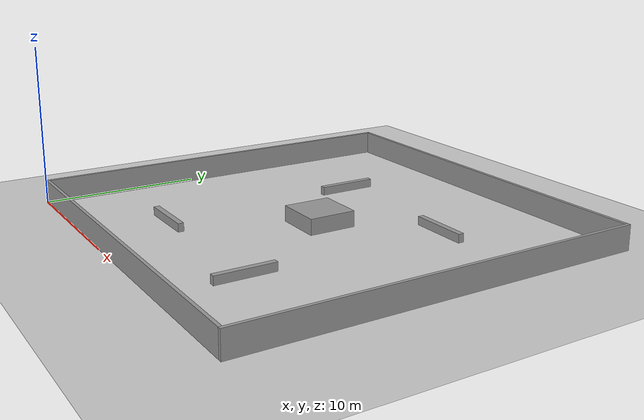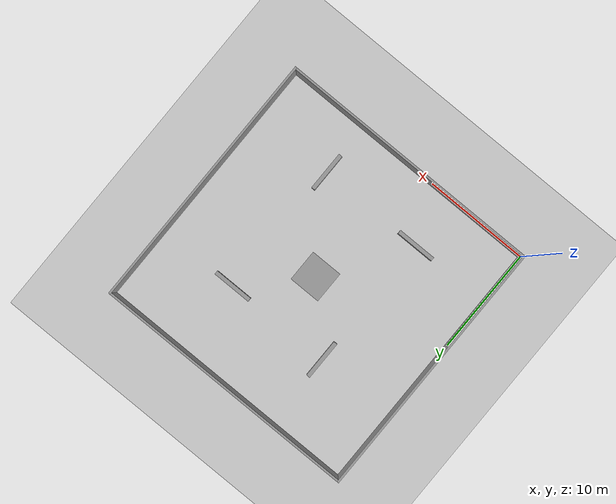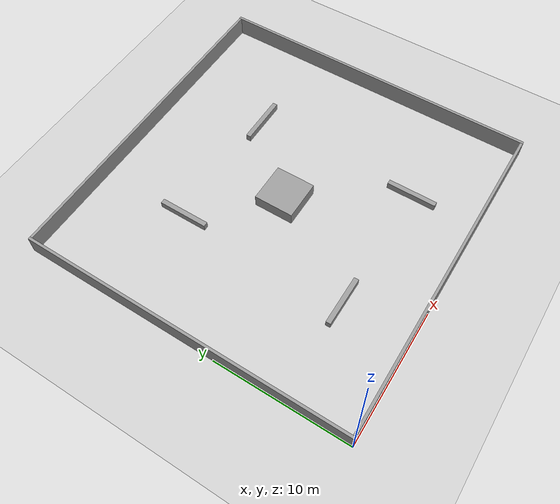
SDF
<sdf version="1.6">
 <world name="default">
  <light name="sun" type="directional">
   <pose>0 0 10 0 -0 0</pose>
   <diffuse>0.8 0.8 0.8 1</diffuse>
   <specular>0.2 0.2 0.2 1</specular>
   <attenuation>
    <range>1000</range>
    <constant>0.9</constant>
    <linear>0.01</linear>
    <quadratic>0.001</quadratic>
   </attenuation>
   <direction>-0.5 0.1 -0.9</direction>
  </light>
  <model name="ground_plane">
   <static>1</static>
   <link name="link">
    <collision name="collision">
     <geometry><plane><normal>0 0 1</normal><size>100 100</size></plane></geometry>
     <surface><friction><ode><mu>100</mu><mu2>50</mu2></ode></friction></surface>
    </collision>
    <visual name="visual">
     <cast_shadows>0</cast_shadows>
     <geometry><plane><normal>0 0 1</normal><size>100 100</size></plane></geometry>
     <material>
      <script><uri>file://media/materials/scripts/gazebo.material</uri><name>Gazebo/Grey</name></script>
     </material>
    </visual>
   </link>
  </model>
  <gravity>0 0 -9.8</gravity>
  <magnetic_field>6e-06 2.3e-05 -4.2e-05</magnetic_field>
  <atmosphere type="adiabatic"/>
  <physics name="default_physics" default="0" type="ode">
   <max_step_size>0.001</max_step_size>
   <real_time_factor>1</real_time_factor>
   <real_time_update_rate>1000</real_time_update_rate>
  </physics>
  <scene><ambient>0.4 0.4 0.4 1</ambient><background>0.7 0.7 0.7 1</background><shadows>1</shadows></scene>
  <spherical_coordinates>
   <surface_model>EARTH_WGS84</surface_model>
   <latitude_deg>0</latitude_deg>
   <longitude_deg>0</longitude_deg>
   <elevation>0</elevation>
   <heading_deg>0</heading_deg>
  </spherical_coordinates>
  <model name="play_field">
   <link name="link_0">
    <pose>0 -8.32836 0.5 0 -0 0</pose>
    <inertial>
     <mass>25</mass>
     <inertia>
      <ixx>0.16667</ixx>
      <ixy>0</ixy>
      <ixz>0</ixz>
      <iyy>0.166667</iyy>
      <iyz>0</iyz>
      <izz>0.166667</izz>
     </inertia>
    </inertial>
    <self_collide>1</self_collide>
    <visual name="visual">
     <geometry><box><size>25 0.2 2</size></box></geometry>
     <material>
      <lighting>1</lighting>
      <script><uri>file://media/materials/scripts/gazebo.material</uri><name>Gazebo/Grey</name></script>
      <shader type="pixel"><normal_map>__default__</normal_map></shader>
      <ambient>0.3 0.3 0.3 1</ambient>
      <diffuse>0.7 0.7 0.7 1</diffuse>
      <specular>0.01 0.01 0.01 1</specular>
      <emissive>0 0 0 1</emissive>
     </material>
    </visual>
    <collision name="collision">
     <geometry><box><size>25 0.2 2</size></box></geometry>
     <surface>
      <friction>
       <ode><mu>1</mu><mu2>1</mu2><fdir1>0 0 0</fdir1><slip1>0</slip1><slip2>0</slip2></ode>
       <torsional>
        <coefficient>1</coefficient>
        <patch_radius>0</patch_radius>
        <surface_radius>0</surface_radius>
        <use_patch_radius>1</use_patch_radius>
        <ode><slip>0</slip></ode>
       </torsional>
      </friction>
      <bounce><restitution_coefficient>0</restitution_coefficient><threshold>1e+06</threshold></bounce>
      <contact>
       <collide_without_contact>0</collide_without_contact>
       <collide_without_contact_bitmask>1</collide_without_contact_bitmask>
       <collide_bitmask>1</collide_bitmask>
       <ode>
        <soft_cfm>0</soft_cfm>
        <soft_erp>0.2</soft_erp>
        <kp>1e+13</kp>
        <kd>1</kd>
        <max_vel>0.01</max_vel>
        <min_depth>0</min_depth>
       </ode>
       <bullet>
        <split_impulse>1</split_impulse>
        <split_impulse_penetration_threshold>-0.01</split_impulse_penetration_threshold>
        <soft_cfm>0</soft_cfm>
        <soft_erp>0.2</soft_erp>
        <kp>1e+13</kp>
        <kd>1</kd>
       </bullet>
      </contact>
     </surface>
    </collision>
   </link>
   <link name="link_0_0">
    <pose>0 4.27164 0.5 0 -0 0</pose>
    <inertial>
     <mass>1</mass>
     <inertia>
      <ixx>0.166667</ixx>
      <ixy>0</ixy>
      <ixz>0</ixz>
      <iyy>0.166667</iyy>
      <iyz>0</iyz>
      <izz>0.166667</izz>
     </inertia>
    </inertial>
    <visual name="visual">
     <geometry><box><size>3 3 1</size></box></geometry>
     <material>
      <lighting>1</lighting>
      <script><uri>file://media/materials/scripts/gazebo.material</uri><name>Gazebo/Grey</name></script>
      <shader type="pixel"><normal_map>__default__</normal_map></shader>
      <ambient>0.3 0.3 0.3 1</ambient>
      <diffuse>0.7 0.7 0.7 1</diffuse>
      <specular>0.01 0.01 0.01 1</specular>
      <emissive>0 0 0 1</emissive>
     </material>
    </visual>
    <collision name="collision">
     <geometry><box><size>3 3 1</size></box></geometry>
     <surface>
      <friction>
       <ode><mu>1</mu><mu2>1</mu2><fdir1>0 0 0</fdir1><slip1>0</slip1><slip2>0</slip2></ode>
       <torsional>
        <coefficient>1</coefficient>
        <patch_radius>0</patch_radius>
        <surface_radius>0</surface_radius>
        <use_patch_radius>1</use_patch_radius>
        <ode><slip>0</slip></ode>
       </torsional>
      </friction>
      <bounce><restitution_coefficient>0</restitution_coefficient><threshold>1e+06</threshold></bounce>
      <contact>
       <collide_without_contact>0</collide_without_contact>
       <collide_without_contact_bitmask>1</collide_without_contact_bitmask>
       <collide_bitmask>1</collide_bitmask>
       <ode>
        <soft_cfm>0</soft_cfm>
        <soft_erp>0.2</soft_erp>
        <kp>1e+13</kp>
        <kd>1</kd>
        <max_vel>0.01</max_vel>
        <min_depth>0</min_depth>
       </ode>
       <bullet>
        <split_impulse>1</split_impulse>
        <split_impulse_penetration_threshold>-0.01</split_impulse_penetration_threshold>
        <soft_cfm>0</soft_cfm>
        <soft_erp>0.2</soft_erp>
        <kp>1e+13</kp>
        <kd>1</kd>
       </bullet>
      </contact>
     </surface>
    </collision>
   </link>
   <link name="link_0_clone">
    <pose>0 16.4716 0.5 0 -0 0</pose>
    <inertial>
     <mass>25</mass>
     <inertia>
      <ixx>0.16667</ixx>
      <ixy>0</ixy>
      <ixz>0</ixz>
      <iyy>0.166667</iyy>
      <iyz>0</iyz>
      <izz>0.166667</izz>
     </inertia>
    </inertial>
    <self_collide>1</self_collide>
    <visual name="visual">
     <geometry><box><size>25 0.2 2</size></box></geometry>
     <material>
      <lighting>1</lighting>
      <script><uri>file://media/materials/scripts/gazebo.material</uri><name>Gazebo/Grey</name></script>
      <shader type="pixel"><normal_map>__default__</normal_map></shader>
      <ambient>0.3 0.3 0.3 1</ambient>
      <diffuse>0.7 0.7 0.7 1</diffuse>
      <specular>0.01 0.01 0.01 1</specular>
      <emissive>0 0 0 1</emissive>
     </material>
    </visual>
    <collision name="collision">
     <geometry><box><size>25 0.2 2</size></box></geometry>
     <surface>
      <friction>
       <ode><mu>1</mu><mu2>1</mu2><fdir1>0 0 0</fdir1><slip1>0</slip1><slip2>0</slip2></ode>
       <torsional>
        <coefficient>1</coefficient>
        <patch_radius>0</patch_radius>
        <surface_radius>0</surface_radius>
        <use_patch_radius>1</use_patch_radius>
        <ode><slip>0</slip></ode>
       </torsional>
      </friction>
      <bounce><restitution_coefficient>0</restitution_coefficient><threshold>1e+06</threshold></bounce>
      <contact>
       <collide_without_contact>0</collide_without_contact>
       <collide_without_contact_bitmask>1</collide_without_contact_bitmask>
       <collide_bitmask>1</collide_bitmask>
       <ode>
        <soft_cfm>0</soft_cfm>
        <soft_erp>0.2</soft_erp>
        <kp>1e+13</kp>
        <kd>1</kd>
        <max_vel>0.01</max_vel>
        <min_depth>0</min_depth>
       </ode>
       <bullet>
        <split_impulse>1</split_impulse>
        <split_impulse_penetration_threshold>-0.01</split_impulse_penetration_threshold>
        <soft_cfm>0</soft_cfm>
        <soft_erp>0.2</soft_erp>
        <kp>1e+13</kp>
        <kd>1</kd>
       </bullet>
      </contact>
     </surface>
    </collision>
   </link>
   <link name="link_0_clone_clone">
    <pose>12.6 4.07164 0.5 0 -0 1.5708</pose>
    <inertial>
     <mass>25</mass>
     <inertia>
      <ixx>0.16667</ixx>
      <ixy>0</ixy>
      <ixz>0</ixz>
      <iyy>0.166667</iyy>
      <iyz>0</iyz>
      <izz>0.166667</izz>
     </inertia>
    </inertial>
    <self_collide>1</self_collide>
    <visual name="visual">
     <geometry><box><size>25 0.2 2</size></box></geometry>
     <material>
      <lighting>1</lighting>
      <script><uri>file://media/materials/scripts/gazebo.material</uri><name>Gazebo/Grey</name></script>
      <shader type="pixel"><normal_map>__default__</normal_map></shader>
      <ambient>0.3 0.3 0.3 1</ambient>
      <diffuse>0.7 0.7 0.7 1</diffuse>
      <specular>0.01 0.01 0.01 1</specular>
      <emissive>0 0 0 1</emissive>
     </material>
    </visual>
    <collision name="collision">
     <geometry><box><size>25 0.2 2</size></box></geometry>
     <surface>
      <friction>
       <ode><mu>1</mu><mu2>1</mu2><fdir1>0 0 0</fdir1><slip1>0</slip1><slip2>0</slip2></ode>
       <torsional>
        <coefficient>1</coefficient>
        <patch_radius>0</patch_radius>
        <surface_radius>0</surface_radius>
        <use_patch_radius>1</use_patch_radius>
        <ode><slip>0</slip></ode>
       </torsional>
      </friction>
      <bounce><restitution_coefficient>0</restitution_coefficient><threshold>1e+06</threshold></bounce>
      <contact>
       <collide_without_contact>0</collide_without_contact>
       <collide_without_contact_bitmask>1</collide_without_contact_bitmask>
       <collide_bitmask>1</collide_bitmask>
       <ode>
        <soft_cfm>0</soft_cfm>
        <soft_erp>0.2</soft_erp>
        <kp>1e+13</kp>
        <kd>1</kd>
        <max_vel>0.01</max_vel>
        <min_depth>0</min_depth>
       </ode>
       <bullet>
        <split_impulse>1</split_impulse>
        <split_impulse_penetration_threshold>-0.01</split_impulse_penetration_threshold>
        <soft_cfm>0</soft_cfm>
        <soft_erp>0.2</soft_erp>
        <kp>1e+13</kp>
        <kd>1</kd>
       </bullet>
      </contact>
     </surface>
    </collision>
   </link>
   <link name="link_0_clone_clone_clone">
    <pose>-12.6 4.07164 0.5 0 -0 1.5708</pose>
    <inertial>
     <mass>25</mass>
     <inertia>
      <ixx>0.16667</ixx>
      <ixy>0</ixy>
      <ixz>0</ixz>
      <iyy>0.166667</iyy>
      <iyz>0</iyz>
      <izz>0.166667</izz>
     </inertia>
    </inertial>
    <self_collide>1</self_collide>
    <visual name="visual">
     <geometry><box><size>25 0.2 2</size></box></geometry>
     <material>
      <lighting>1</lighting>
      <script><uri>file://media/materials/scripts/gazebo.material</uri><name>Gazebo/Grey</name></script>
      <shader type="pixel"><normal_map>__default__</normal_map></shader>
      <ambient>0.3 0.3 0.3 1</ambient>
      <diffuse>0.7 0.7 0.7 1</diffuse>
      <specular>0.01 0.01 0.01 1</specular>
      <emissive>0 0 0 1</emissive>
     </material>
    </visual>
    <collision name="collision">
     <geometry><box><size>25 0.2 2</size></box></geometry>
     <surface>
      <friction>
       <ode><mu>1</mu><mu2>1</mu2><fdir1>0 0 0</fdir1><slip1>0</slip1><slip2>0</slip2></ode>
       <torsional>
        <coefficient>1</coefficient>
        <patch_radius>0</patch_radius>
        <surface_radius>0</surface_radius>
        <use_patch_radius>1</use_patch_radius>
        <ode><slip>0</slip></ode>
       </torsional>
      </friction>
      <bounce><restitution_coefficient>0</restitution_coefficient><threshold>1e+06</threshold></bounce>
      <contact>
       <collide_without_contact>0</collide_without_contact>
       <collide_without_contact_bitmask>1</collide_without_contact_bitmask>
       <collide_bitmask>1</collide_bitmask>
       <ode>
        <soft_cfm>0</soft_cfm>
        <soft_erp>0.2</soft_erp>
        <kp>1e+13</kp>
        <kd>1</kd>
        <max_vel>0.01</max_vel>
        <min_depth>0</min_depth>
       </ode>
       <bullet>
        <split_impulse>1</split_impulse>
        <split_impulse_penetration_threshold>-0.01</split_impulse_penetration_threshold>
        <soft_cfm>0</soft_cfm>
        <soft_erp>0.2</soft_erp>
        <kp>1e+13</kp>
        <kd>1</kd>
       </bullet>
      </contact>
     </surface>
    </collision>
   </link>
   <link name="link_1">
    <pose>-5 -3.32836 0 0 -0 0</pose>
    <inertial>
     <mass>1.35642</mass>
     <inertia><ixx>0.127922</ixx><ixy>0</ixy><ixz>0</ixz><iyy>1.69215</iyy><iyz>0</iyz><izz>1.594</izz></inertia>
    </inertial>
    <visual name="visual">
     <geometry><box><size>3.73766 0.362906 1</size></box></geometry>
     <material>
      <lighting>1</lighting>
      <script><uri>file://media/materials/scripts/gazebo.material</uri><name>Gazebo/Grey</name></script>
      <shader type="pixel"/>
      <ambient>0.3 0.3 0.3 1</ambient>
      <diffuse>0.7 0.7 0.7 1</diffuse>
      <specular>0.01 0.01 0.01 1</specular>
      <emissive>0 0 0 1</emissive>
     </material>
    </visual>
    <collision name="collision">
     <geometry><box><size>3.73766 0.362906 1</size></box></geometry>
     <surface>
      <friction>
       <ode><mu>1</mu><mu2>1</mu2><fdir1>0 0 0</fdir1><slip1>0</slip1><slip2>0</slip2></ode>
       <torsional>
        <coefficient>1</coefficient>
        <patch_radius>0</patch_radius>
        <surface_radius>0</surface_radius>
        <use_patch_radius>1</use_patch_radius>
        <ode><slip>0</slip></ode>
       </torsional>
      </friction>
      <bounce><restitution_coefficient>0</restitution_coefficient><threshold>1e+06</threshold></bounce>
      <contact>
       <collide_without_contact>0</collide_without_contact>
       <collide_without_contact_bitmask>1</collide_without_contact_bitmask>
       <collide_bitmask>1</collide_bitmask>
       <ode>
        <soft_cfm>0</soft_cfm>
        <soft_erp>0.2</soft_erp>
        <kp>1e+13</kp>
        <kd>1</kd>
        <max_vel>0.01</max_vel>
        <min_depth>0</min_depth>
       </ode>
       <bullet>
        <split_impulse>1</split_impulse>
        <split_impulse_penetration_threshold>-0.01</split_impulse_penetration_threshold>
        <soft_cfm>0</soft_cfm>
        <soft_erp>0.2</soft_erp>
        <kp>1e+13</kp>
        <kd>1</kd>
       </bullet>
      </contact>
     </surface>
    </collision>
   </link>
   <link name="link_1_clone">
    <pose>5 9.47164 0 0 -0 0</pose>
    <inertial>
     <mass>1.35642</mass>
     <inertia><ixx>0.127922</ixx><ixy>0</ixy><ixz>0</ixz><iyy>1.69215</iyy><iyz>0</iyz><izz>1.594</izz></inertia>
    </inertial>
    <visual name="visual">
     <geometry><box><size>3.73766 0.362906 1</size></box></geometry>
     <material>
      <lighting>1</lighting>
      <script><uri>file://media/materials/scripts/gazebo.material</uri><name>Gazebo/Grey</name></script>
      <shader type="pixel"/>
      <ambient>0.3 0.3 0.3 1</ambient>
      <diffuse>0.7 0.7 0.7 1</diffuse>
      <specular>0.01 0.01 0.01 1</specular>
      <emissive>0 0 0 1</emissive>
     </material>
    </visual>
    <collision name="collision">
     <geometry><box><size>3.73766 0.362906 1</size></box></geometry>
     <surface>
      <friction>
       <ode><mu>1</mu><mu2>1</mu2><fdir1>0 0 0</fdir1><slip1>0</slip1><slip2>0</slip2></ode>
       <torsional>
        <coefficient>1</coefficient>
        <patch_radius>0</patch_radius>
        <surface_radius>0</surface_radius>
        <use_patch_radius>1</use_patch_radius>
        <ode><slip>0</slip></ode>
       </torsional>
      </friction>
      <bounce><restitution_coefficient>0</restitution_coefficient><threshold>1e+06</threshold></bounce>
      <contact>
       <collide_without_contact>0</collide_without_contact>
       <collide_without_contact_bitmask>1</collide_without_contact_bitmask>
       <collide_bitmask>1</collide_bitmask>
       <ode>
        <soft_cfm>0</soft_cfm>
        <soft_erp>0.2</soft_erp>
        <kp>1e+13</kp>
        <kd>1</kd>
        <max_vel>0.01</max_vel>
        <min_depth>0</min_depth>
       </ode>
       <bullet>
        <split_impulse>1</split_impulse>
        <split_impulse_penetration_threshold>-0.01</split_impulse_penetration_threshold>
        <soft_cfm>0</soft_cfm>
        <soft_erp>0.2</soft_erp>
        <kp>1e+13</kp>
        <kd>1</kd>
       </bullet>
      </contact>
     </surface>
    </collision>
   </link>
   <link name="link_1_clone_0">
    <pose>-5 9.47164 0 0 -0 1.5708</pose>
    <inertial>
     <mass>1.35642</mass>
     <inertia><ixx>0.127922</ixx><ixy>0</ixy><ixz>0</ixz><iyy>1.69215</iyy><iyz>0</iyz><izz>1.594</izz></inertia>
    </inertial>
    <visual name="visual">
     <geometry><box><size>3.73766 0.362906 1</size></box></geometry>
     <material>
      <lighting>1</lighting>
      <script><uri>file://media/materials/scripts/gazebo.material</uri><name>Gazebo/Grey</name></script>
      <shader type="pixel"><normal_map>__default__</normal_map></shader>
      <ambient>0.3 0.3 0.3 1</ambient>
      <diffuse>0.7 0.7 0.7 1</diffuse>
      <specular>0.01 0.01 0.01 1</specular>
      <emissive>0 0 0 1</emissive>
     </material>
    </visual>
    <collision name="collision">
     <geometry><box><size>3.73766 0.362906 1</size></box></geometry>
     <surface>
      <friction>
       <ode><mu>1</mu><mu2>1</mu2><fdir1>0 0 0</fdir1><slip1>0</slip1><slip2>0</slip2></ode>
       <torsional>
        <coefficient>1</coefficient>
        <patch_radius>0</patch_radius>
        <surface_radius>0</surface_radius>
        <use_patch_radius>1</use_patch_radius>
        <ode><slip>0</slip></ode>
       </torsional>
      </friction>
      <bounce><restitution_coefficient>0</restitution_coefficient><threshold>1e+06</threshold></bounce>
      <contact>
       <collide_without_contact>0</collide_without_contact>
       <collide_without_contact_bitmask>1</collide_without_contact_bitmask>
       <collide_bitmask>1</collide_bitmask>
       <ode>
        <soft_cfm>0</soft_cfm>
        <soft_erp>0.2</soft_erp>
        <kp>1e+13</kp>
        <kd>1</kd>
        <max_vel>0.01</max_vel>
        <min_depth>0</min_depth>
       </ode>
       <bullet>
        <split_impulse>1</split_impulse>
        <split_impulse_penetration_threshold>-0.01</split_impulse_penetration_threshold>
        <soft_cfm>0</soft_cfm>
        <soft_erp>0.2</soft_erp>
        <kp>1e+13</kp>
        <kd>1</kd>
       </bullet>
      </contact>
     </surface>
    </collision>
   </link>
   <link name="link_1_clone_0_clone">
    <pose>5 -3.32836 0 0 -0 1.5708</pose>
    <inertial>
     <mass>1.35642</mass>
     <inertia><ixx>0.127922</ixx><ixy>0</ixy><ixz>0</ixz><iyy>1.69215</iyy><iyz>0</iyz><izz>1.594</izz></inertia>
    </inertial>
    <visual name="visual">
     <geometry><box><size>3.73766 0.362906 1</size></box></geometry>
     <material>
      <lighting>1</lighting>
      <script><uri>file://media/materials/scripts/gazebo.material</uri><name>Gazebo/Grey</name></script>
      <shader type="pixel"><normal_map>__default__</normal_map></shader>
      <ambient>0.3 0.3 0.3 1</ambient>
      <diffuse>0.7 0.7 0.7 1</diffuse>
      <specular>0.01 0.01 0.01 1</specular>
      <emissive>0 0 0 1</emissive>
     </material>
    </visual>
    <collision name="collision">
     <geometry><box><size>3.73766 0.362906 1</size></box></geometry>
     <surface>
      <friction>
       <ode><mu>1</mu><mu2>1</mu2><fdir1>0 0 0</fdir1><slip1>0</slip1><slip2>0</slip2></ode>
       <torsional>
        <coefficient>1</coefficient>
        <patch_radius>0</patch_radius>
        <surface_radius>0</surface_radius>
        <use_patch_radius>1</use_patch_radius>
        <ode><slip>0</slip></ode>
       </torsional>
      </friction>
      <bounce><restitution_coefficient>0</restitution_coefficient><threshold>1e+06</threshold></bounce>
      <contact>
       <collide_without_contact>0</collide_without_contact>
       <collide_without_contact_bitmask>1</collide_without_contact_bitmask>
       <collide_bitmask>1</collide_bitmask>
       <ode>
        <soft_cfm>0</soft_cfm>
        <soft_erp>0.2</soft_erp>
        <kp>1e+13</kp>
        <kd>1</kd>
        <max_vel>0.01</max_vel>
        <min_depth>0</min_depth>
       </ode>
       <bullet>
        <split_impulse>1</split_impulse>
        <split_impulse_penetration_threshold>-0.01</split_impulse_penetration_threshold>
        <soft_cfm>0</soft_cfm>
        <soft_erp>0.2</soft_erp>
        <kp>1e+13</kp>
        <kd>1</kd>
       </bullet>
      </contact>
     </surface>
    </collision>
   </link>
   <joint name="link_0_JOINT_0_0" type="fixed">
    <parent>link_0</parent>
    <child>link_0_clone</child>
    <physics>
     <ode><limit><cfm>0</cfm><erp>0.2</erp></limit><suspension><cfm>0</cfm><erp>0.2</erp></suspension></ode>
    </physics>
   </joint>
   <joint name="link_0_JOINT_0_1" type="revolute">
    <parent>link_0</parent>
    <child>link_0_0</child>
    <axis>
     <xyz>1 0 0</xyz>
     <use_parent_model_frame>0</use_parent_model_frame>
     <limit>
      <lower>-1.79769e+308</lower>
      <upper>1.79769e+308</upper>
      <effort>-1</effort>
      <velocity>-1</velocity>
     </limit>
     <dynamics>
      <spring_reference>0</spring_reference>
      <spring_stiffness>0</spring_stiffness>
      <damping>0</damping>
     </dynamics>
    </axis>
    <physics>
     <ode><limit><cfm>0</cfm><erp>0.2</erp></limit><suspension><cfm>0</cfm><erp>0.2</erp></suspension></ode>
    </physics>
   </joint>
   <joint name="link_0_JOINT_0" type="fixed">
    <parent>link_0</parent>
    <child>link_0_clone_clone_clone</child>
    <physics>
     <ode><limit><cfm>0</cfm><erp>0.2</erp></limit><suspension><cfm>0</cfm><erp>0.2</erp></suspension></ode>
    </physics>
   </joint>
   <joint name="link_0_JOINT_1" type="fixed">
    <parent>link_0</parent>
    <child>link_0_clone_clone</child>
    <physics>
     <ode><limit><cfm>0</cfm><erp>0.2</erp></limit><suspension><cfm>0</cfm><erp>0.2</erp></suspension></ode>
    </physics>
   </joint>
   <joint name="link_0_JOINT_3" type="fixed">
    <parent>link_0</parent>
    <child>link_1</child>
    <physics>
     <ode><limit><cfm>0</cfm><erp>0.2</erp></limit><suspension><cfm>0</cfm><erp>0.2</erp></suspension></ode>
    </physics>
   </joint>
   <joint name="link_0_JOINT_4" type="fixed">
    <parent>link_0</parent>
    <child>link_1_clone_0_clone</child>
    <physics>
     <ode><limit><cfm>0</cfm><erp>0.2</erp></limit><suspension><cfm>0</cfm><erp>0.2</erp></suspension></ode>
    </physics>
   </joint>
   <joint name="link_0_clone_JOINT_1" type="fixed">
    <parent>link_0_clone</parent>
    <child>link_1_clone_0</child>
    <physics>
     <ode><limit><cfm>0</cfm><erp>0.2</erp></limit><suspension><cfm>0</cfm><erp>0.2</erp></suspension></ode>
    </physics>
   </joint>
   <joint name="link_0_clone_JOINT_2" type="fixed">
    <parent>link_0_clone</parent>
    <child>link_1_clone</child>
    <physics>
     <ode><limit><cfm>0</cfm><erp>0.2</erp></limit><suspension><cfm>0</cfm><erp>0.2</erp></suspension></ode>
    </physics>
   </joint>
   <static>1</static>
   <pose>12.7028 8.43698 0 0 -0 0</pose>
  </model>
 </world>
</sdf>
